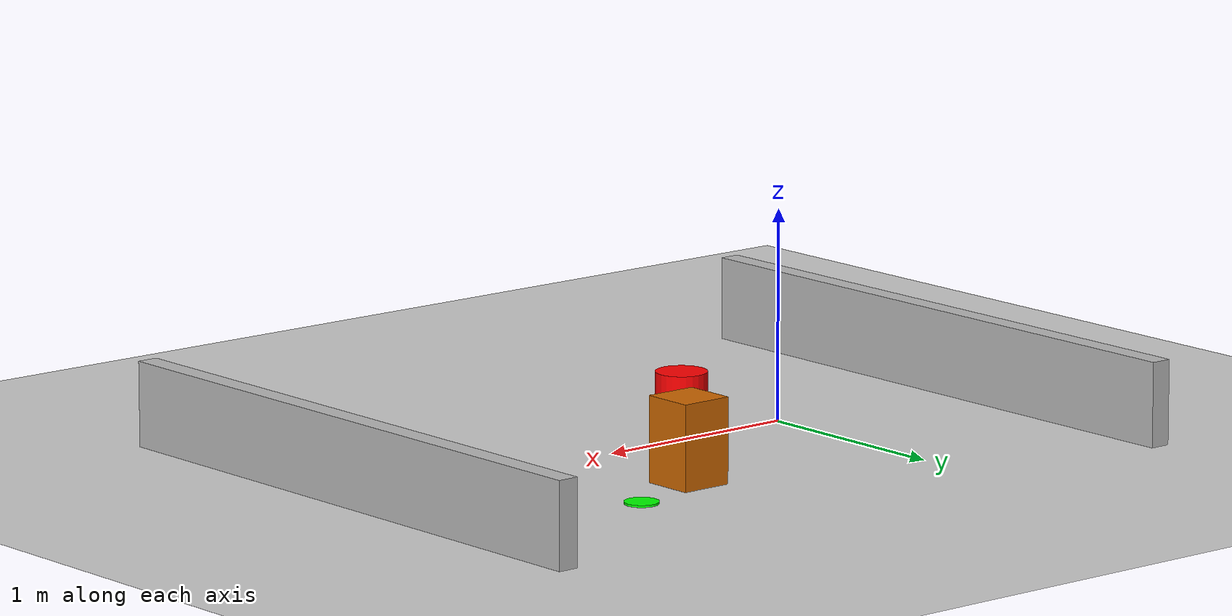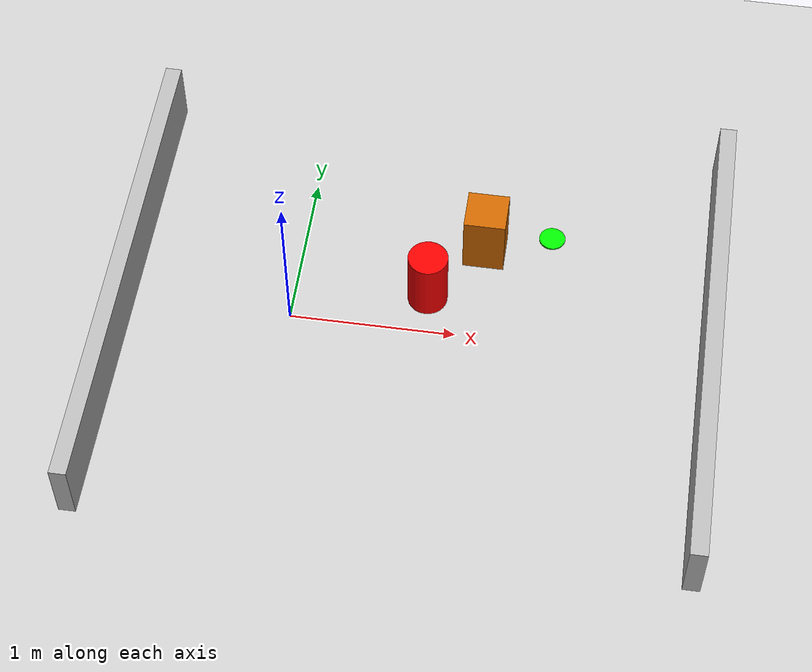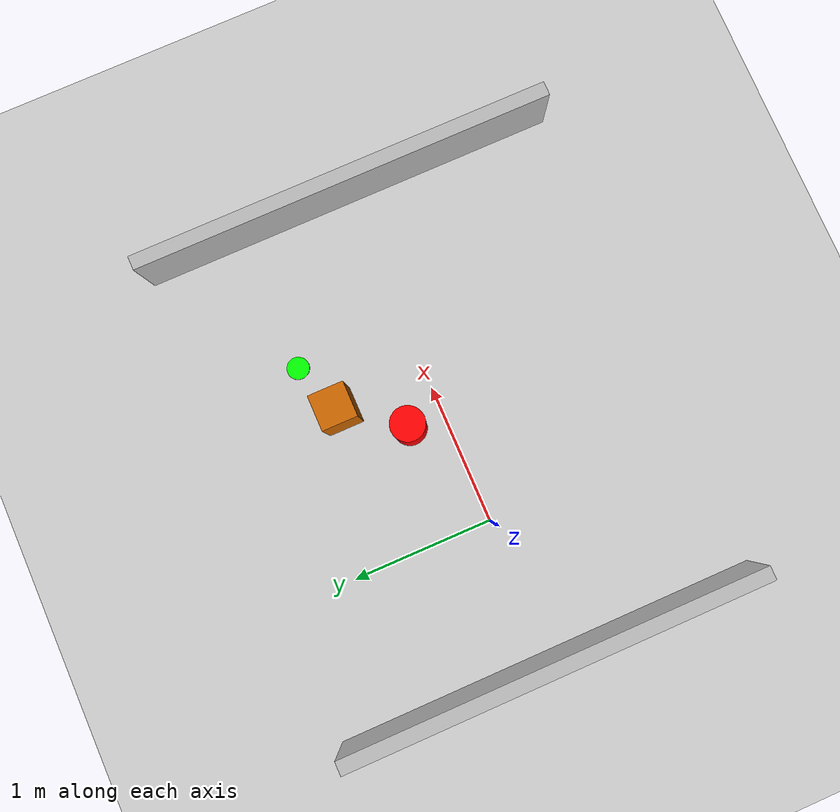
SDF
<?xml version="1.0" ?>
<sdf version="1.6">
  <world name="piso_plano_entrenamiento">

    <!-- Iluminacion y plano de suelo -->
    <include>
      <uri>model://sun</uri>
    </include>
    <include>
      <uri>model://ground_plane</uri>
    </include>

    <!-- Parametros de fisica para piso plano liso -->
    <physics type="ode">
      <max_step_size>0.002</max_step_size>
      <real_time_factor>1.0</real_time_factor>
      <real_time_update_rate>500</real_time_update_rate>
    </physics>

    <!-- Marcador visual del Punto Objetivo B (1.5m, 0.8m) -->
    <model name="objetivo_punto_b">
      <static>true</static>
      <pose>1.5 0.8 0.005 0 0 0</pose>
      <link name="link">
        <visual name="visual">
          <geometry>
            <cylinder>
              <radius>0.08</radius>
              <length>0.01</length>
            </cylinder>
          </geometry>
          <material>
            <ambient>0 1 0 1</ambient>
            <diffuse>0 1 0 1</diffuse>
          </material>
        </visual>
      </link>
    </model>

    <!-- Obstaculo intermedio 1 (Cilindro para probar desvio a 180 mm) -->
    <model name="obstaculo_1">
      <static>true</static>
      <pose>0.8 0.25 0.2 0 0 0</pose>
      <link name="link">
        <collision name="col">
          <geometry><cylinder><radius>0.12</radius><length>0.4</length></cylinder></geometry>
        </collision>
        <visual name="vis">
          <geometry><cylinder><radius>0.12</radius><length>0.4</length></cylinder></geometry>
          <material><ambient>1 0 0 1</ambient><diffuse>1 0 0 1</diffuse></material>
        </visual>
      </link>
    </model>

    <!-- Obstaculo 2 (Caja que fuerza decision de giro pivote) -->
    <model name="obstaculo_2">
      <static>true</static>
      <pose>1.1 0.65 0.2 0 0 0</pose>
      <link name="link">
        <collision name="col">
          <geometry><box><size>0.25 0.25 0.4</size></box></geometry>
        </collision>
        <visual name="vis">
          <geometry><box><size>0.25 0.25 0.4</size></box></geometry>
          <material><ambient>0.8 0.4 0 1</ambient><diffuse>0.8 0.4 0 1</diffuse></material>
        </visual>
      </link>
    </model>

    <!-- Paredes perimetrales del recinto de pruebas -->
    <model name="pared_frontal"><static>true</static><pose>2.5 0 0.2 0 0 0</pose><link name="l"><collision name="c"><geometry><box><size>0.1 3.0 0.4</size></box></geometry></collision><visual name="v"><geometry><box><size>0.1 3.0 0.4</size></box></geometry></visual></link></model>
    <model name="pared_trasera"><static>true</static><pose>-1.0 0 0.2 0 0 0</pose><link name="l"><collision name="c"><geometry><box><size>0.1 3.0 0.4</size></box></geometry></collision><visual name="v"><geometry><box><size>0.1 3.0 0.4</size></box></geometry></visual></link></model>

  </world>
</sdf>
